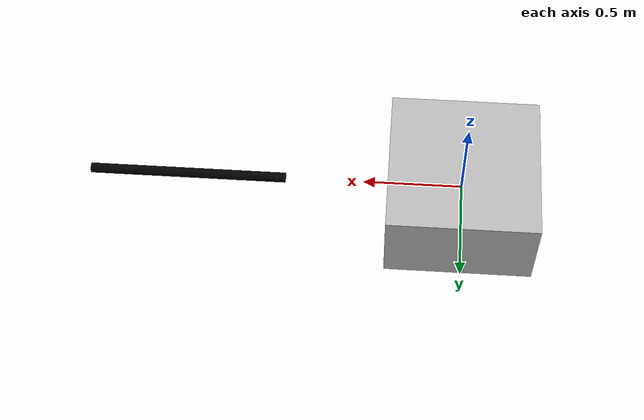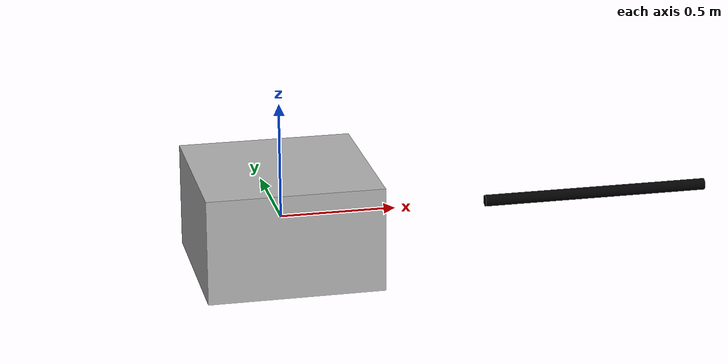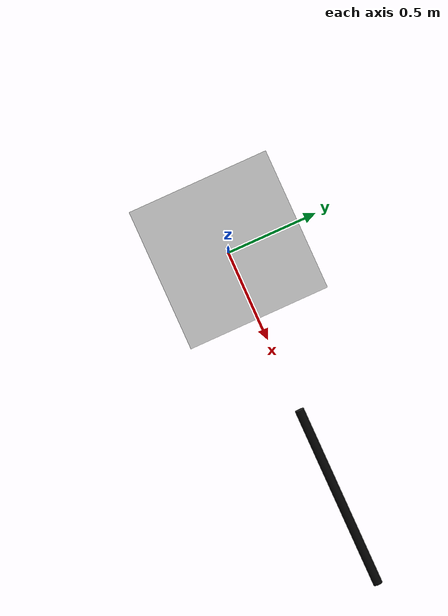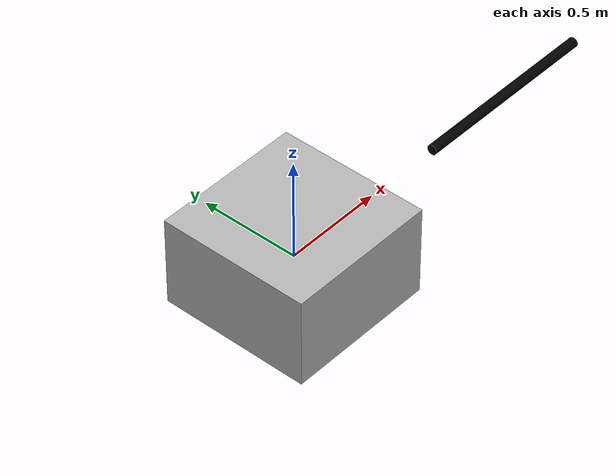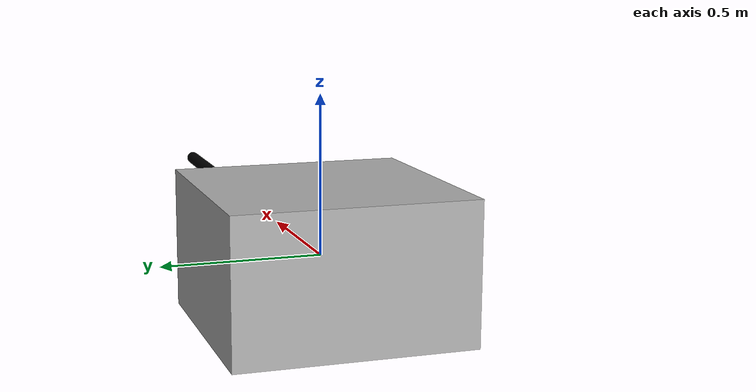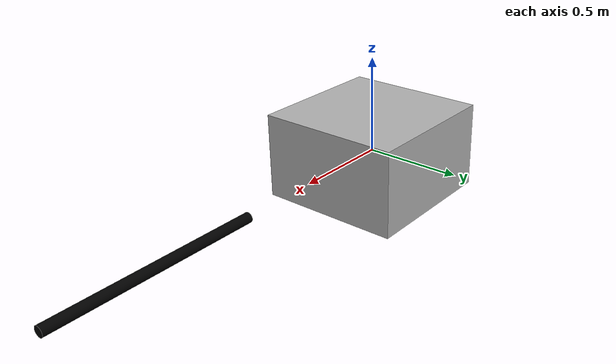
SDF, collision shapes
<?xml version="1.0" ?>

  <sdf version="1.5">
    <model name="tilt_quadcopter_fix">

      <include>
        <uri>model://tilt_quadcopter_base</uri>
        <name>tilt_quadcopter_base</name>
        <pose>0 0 0.0 0 0 0</pose>
      </include>

      <link name="front_rod">
        <pose>1.4 0 0 0 0 0</pose>
        <inertial>
          <mass>0.1</mass>
          <inertia>
            <ixx>0.000125</ixx>
            <iyy>0.008458</iyy>
            <izz>0.008458</izz>
            <ixy>0</ixy>
            <ixz>0</ixz>
            <iyz>0</iyz>
          </inertia>
        </inertial>
        <collision name="front_rod_collision">
          <pose>0 0 0 0 1.57079632679 0</pose>
          <geometry>
            <cylinder>
              <length>1.0</length>
              <radius>0.025</radius>
            </cylinder>
          </geometry>
          <surface>
            <friction>
              <ode>
                <mu>0.5</mu>
                <mu2>0.5</mu2>
              </ode>
            </friction>
            <contact>
              <ode>
                <kp>2000</kp>
                <kd>40</kd>
                <max_vel>0.05</max_vel>
              </ode>
            </contact>
          </surface>
        </collision>
        <visual name="front_rod_visual">
          <pose>0 0 0 0 1.57079632679 0</pose>
          <geometry>
            <cylinder>
              <length>1.0</length>
              <radius>0.025</radius>
            </cylinder>
          </geometry>
          <material>
            <ambient>0 0 0 1</ambient>
            <diffuse>0 0 0 1</diffuse>
          </material>
        </visual>
        <sensor name="front_rangefinder" type="gpu_lidar">
          <visualize>true</visualize>
          <!-- Face the fixed contact wall at x=3.2 in the world frame. -->
          <pose>0.5 0 0 0 0 0</pose>
          <always_on>true</always_on>
          <update_rate>50</update_rate>
          <lidar>
            <scan>
              <horizontal>
                <samples>1</samples>
                <resolution>1</resolution>
                <min_angle>0</min_angle>
                <max_angle>0</max_angle>
              </horizontal>
            </scan>
            <range>
              <min>0.05</min>
              <max>10.0</max>
              <resolution>0.001</resolution>
            </range>
          </lidar>
        </sensor>
      </link>
      <joint name="front_rod_joint" type="prismatic">
        <parent>tilt_quadcopter_base::base</parent>
        <child>front_rod</child>
        <axis>
          <xyz>1 0 0</xyz>
          <limit>
            <lower>-0.12</lower>
            <upper>0.0</upper>
            <effort>200</effort>
            <velocity>1.0</velocity>
          </limit>
          <dynamics>
            <damping>30.0</damping>
            <spring_reference>0.0</spring_reference>
            <spring_stiffness>100.0</spring_stiffness>
          </dynamics>
          <use_parent_model_frame>1</use_parent_model_frame>
        </axis>
        <physics>
          <ode>
            <implicit_spring_damper>1</implicit_spring_damper>
          </ode>
        </physics>
        <sensor name="front_rod_force_torque" type="force_torque">
          <always_on>true</always_on>
          <update_rate>1000</update_rate>
          <force_torque>
            <frame>child</frame>
            <measure_direction>parent_to_child</measure_direction>
          </force_torque>
          <plugin name="front_adm002" filename="libgazebo_adm002_plugin.so">
            <forceAxis>x</forceAxis>
            <forceSign>1.0</forceSign>
            <forceScale>1.0</forceScale>
            <udpBindAddress>127.0.0.1</udpBindAddress>
            <udpBindPort>9024</udpBindPort>
            <streamRateHz>100.0</streamRateHz>
            <deviceAddress>1</deviceAddress>
            <rosTopic>/tilt_quadcopter_fix/front_rod/contact_force_x</rosTopic>
          </plugin>
        </sensor>
      </joint>

      <include>
        <uri>model://tilt_quadcopter_tilt_front</uri>
        <name>tilt_quadcopter_fix_tilt_front_0</name>
        <pose>0.765 -0.835 0 0 0 0</pose>
      </include>
      <joint name = "tilt_quadcopter_fix_tilt_front_0_joint" type="revolute">
        <parent>tilt_quadcopter_base::base</parent>
        <child>tilt_quadcopter_fix_tilt_front_0::tilt</child>
        <axis>
          <xyz>0 1 0</xyz>
          <limit>
            <lower>-1e+16</lower>
            <upper>1e+16</upper>
          </limit>
          <dynamics>
            <damping>0.1</damping>
            <spring_stiffness>0</spring_stiffness>
            <spring_reference>0</spring_reference>
          </dynamics>
          <use_parent_model_frame>1</use_parent_model_frame>
        </axis>
        <physics>
          <ode>
            <implicit_spring_damper>1</implicit_spring_damper>
          </ode>
        </physics>
      </joint>
      <plugin name = "tilt_quadcopter_fix_tilt_front_0_plugin" filename='librotors_gazebo_motor_model.so'>
        <robotNamespace></robotNamespace>
        <jointName>tilt_quadcopter_fix_tilt_front_0_joint </jointName>
        <linkName>tilt_quadcopter_fix_tilt_front_0::tilt</linkName>
        <turningDirection>cw</turningDirection>
        <motorType>position</motorType>
        <commandSubTopic>/gazebo/command/tilt1_pos</commandSubTopic>
        <motorNumber>0</motorNumber>
        <motorSpeedPubTopic>tilt_pos/0</motorSpeedPubTopic>
        <joint_control_pid>
          <p>3</p>
          <i>1.2</i>
          <d>0.8</d>
          <iMax>10</iMax>
          <iMin>-10</iMin>
          <cmdMax>50</cmdMax>
          <cmdMin>-50</cmdMin>
        </joint_control_pid>
      </plugin>

      <include>
        <uri>model://tilt_quadcopter_tilt_front</uri>
        <name>tilt_quadcopter_fix_tilt_front_1</name>
        <pose>-0.765 -0.835 0 0 0 0</pose>
      </include>
      <joint name = "tilt_quadcopter_fix_tilt_front_1_joint" type="revolute">
        <parent>tilt_quadcopter_base::base</parent>
        <child>tilt_quadcopter_fix_tilt_front_1::tilt</child>
        <axis>
          <xyz>0 1 0</xyz>
          <limit>
            <lower>-1e+16</lower>
            <upper>1e+16</upper>
          </limit>
          <dynamics>
            <damping>0.1</damping>
            <spring_stiffness>0</spring_stiffness>
            <spring_reference>0</spring_reference>
          </dynamics>
          <use_parent_model_frame>1</use_parent_model_frame>
        </axis>
        <physics>
          <ode>
            <implicit_spring_damper>1</implicit_spring_damper>
          </ode>
        </physics>
      </joint>
      <plugin name = "tilt_quadcopter_fix_tilt_front_1_plugin" filename='librotors_gazebo_motor_model.so'>
        <robotNamespace></robotNamespace>
        <jointName>tilt_quadcopter_fix_tilt_front_1_joint </jointName>
        <linkName>tilt_quadcopter_fix_tilt_front_1::tilt</linkName>
        <turningDirection>cw</turningDirection>
        <motorType>position</motorType>
        <commandSubTopic>/gazebo/command/tilt1_pos</commandSubTopic>
        <motorNumber>1</motorNumber>
        <motorSpeedPubTopic>tilt_pos/1</motorSpeedPubTopic>
        <joint_control_pid>
          <p>3</p>
          <i>1.2</i>
          <d>0.8</d>
          <iMax>10</iMax>
          <iMin>-10</iMin>
          <cmdMax>50</cmdMax>
          <cmdMin>-50</cmdMin>
        </joint_control_pid>
      </plugin>

      <include>
        <uri>model://tilt_quadcopter_tilt_front</uri>
        <name>tilt_quadcopter_fix_tilt_front_2</name>
        <pose>-0.765 0.835 0 0 0 0</pose>
      </include>
      <joint name = "tilt_quadcopter_fix_tilt_front_2_joint" type="revolute">
        <parent>tilt_quadcopter_base::base</parent>
        <child>tilt_quadcopter_fix_tilt_front_2::tilt</child>
        <axis>
          <xyz>0 1 0</xyz>
          <limit>
            <lower>-1e+16</lower>
            <upper>1e+16</upper>
          </limit>
          <dynamics>
            <damping>0.1</damping>
            <spring_stiffness>0</spring_stiffness>
            <spring_reference>0</spring_reference>
          </dynamics>
          <use_parent_model_frame>1</use_parent_model_frame>
        </axis>
        <physics>
          <ode>
            <implicit_spring_damper>1</implicit_spring_damper>
          </ode>
        </physics>
      </joint>
      <plugin name = "tilt_quadcopter_fix_tilt_front_2_plugin" filename='librotors_gazebo_motor_model.so'>
        <robotNamespace></robotNamespace>
        <jointName>tilt_quadcopter_fix_tilt_front_2_joint </jointName>
        <linkName>tilt_quadcopter_fix_tilt_front_2::tilt</linkName>
        <turningDirection>cw</turningDirection>
        <motorType>position</motorType>
        <commandSubTopic>/gazebo/command/tilt1_pos</commandSubTopic>
        <motorNumber>2</motorNumber>
        <motorSpeedPubTopic>tilt_pos/2</motorSpeedPubTopic>
        <joint_control_pid>
          <p>3</p>
          <i>1.2</i>
          <d>0.8</d>
          <iMax>10</iMax>
          <iMin>-10</iMin>
          <cmdMax>50</cmdMax>
          <cmdMin>-50</cmdMin>
        </joint_control_pid>
      </plugin>

      <include>
        <uri>model://tilt_quadcopter_tilt_front</uri>
        <name>tilt_quadcopter_fix_tilt_front_3</name>
        <pose>0.765 0.835 0 0 0 3.141592653589793</pose>
      </include>
      <joint name = "tilt_quadcopter_fix_tilt_front_3_joint" type="revolute">
        <parent>tilt_quadcopter_base::base</parent>
        <child>tilt_quadcopter_fix_tilt_front_3::tilt</child>
        <axis>
          <xyz>0 -1 0</xyz>
          <limit>
            <lower>-1e+16</lower>
            <upper>1e+16</upper>
          </limit>
          <dynamics>
            <damping>0.1</damping>
            <spring_stiffness>0</spring_stiffness>
            <spring_reference>0</spring_reference>
          </dynamics>
          <use_parent_model_frame>1</use_parent_model_frame>
        </axis>
        <physics>
          <ode>
            <implicit_spring_damper>1</implicit_spring_damper>
          </ode>
        </physics>
      </joint>
      <plugin name = "tilt_quadcopter_fix_tilt_front_3_plugin" filename='librotors_gazebo_motor_model.so'>
        <robotNamespace></robotNamespace>
        <jointName>tilt_quadcopter_fix_tilt_front_3_joint </jointName>
        <linkName>tilt_quadcopter_fix_tilt_front_3::tilt</linkName>
        <turningDirection>cw</turningDirection>
        <motorType>position</motorType>
        <commandSubTopic>/gazebo/command/tilt1_pos</commandSubTopic>
        <motorNumber>3</motorNumber>
        <motorSpeedPubTopic>tilt_pos/3</motorSpeedPubTopic>
        <joint_control_pid>
          <p>3</p>
          <i>1.2</i>
          <d>0.8</d>
          <iMax>10</iMax>
          <iMin>-10</iMin>
          <cmdMax>50</cmdMax>
          <cmdMin>-50</cmdMin>
        </joint_control_pid>
      </plugin>

  <include>
    <uri>model://tilt_quadcopter_prop</uri>
    <name>tilt_quadcopter_fix_prop_0</name>
    <pose relative_to= "tilt_quadcopter_fix_prop_0_joint" > 0 0 0 0 0 0</pose>
  </include>
  <joint name = "tilt_quadcopter_fix_prop_0_joint" type="revolute">
    <pose relative_to= 'tilt_quadcopter_fix_tilt_front_0::tilt' > 0 0 0.1 0.3490658503988659 0 0</pose>
    <parent>tilt_quadcopter_fix_tilt_front_0::tilt</parent>
    <child>tilt_quadcopter_fix_prop_0::prop</child>
    <axis>
      <xyz>0 0 1</xyz>
      <limit>
        <lower>-1e+16</lower>
        <upper>1e+16</upper>
      </limit>
      <dynamics>
        <damping>0.0001</damping>
      </dynamics>
    </axis>
  </joint>
  <plugin name = "prop_0_plugin" filename='librotors_gazebo_motor_model.so'>
    <robotNamespace></robotNamespace>
    <jointName>tilt_quadcopter_fix_prop_0_joint</jointName>
    <linkName>tilt_quadcopter_fix_prop_0::prop</linkName>
    <turningDirection>ccw</turningDirection>
    <timeConstantUp>0.0125</timeConstantUp>
    <timeConstantDown>0.025</timeConstantDown>
    <maxRotVelocity>1000</maxRotVelocity>
    <motorConstant>1.199e-05</motorConstant>
    <momentConstant>0.1</momentConstant>
    <commandSubTopic>/gazebo/command/prop_speed</commandSubTopic>
    <motorNumber>0</motorNumber>
    <rotorDragCoefficient>0.000806428</rotorDragCoefficient>
    <rollingMomentCoefficient>1e-06</rollingMomentCoefficient>
    <motorSpeedPubTopic>prop_speed/0</motorSpeedPubTopic>
    <rotorVelocitySlowdownSim>10</rotorVelocitySlowdownSim>
  </plugin>

  <include>
    <uri>model://tilt_quadcopter_prop</uri>
    <name>tilt_quadcopter_fix_prop_1</name>
    <pose relative_to= "tilt_quadcopter_fix_prop_1_joint" > 0 0 0 0 0 0</pose>
  </include>
  <joint name = "tilt_quadcopter_fix_prop_1_joint" type="revolute">
    <pose relative_to= 'tilt_quadcopter_fix_tilt_front_0::tilt' > 0 0 -0.1 -0.3490658503988659 0 0</pose>
    <parent>tilt_quadcopter_fix_tilt_front_0::tilt</parent>
    <child>tilt_quadcopter_fix_prop_1::prop</child>
    <axis>
      <xyz>0 0 1</xyz>
      <limit>
        <lower>-1e+16</lower>
        <upper>1e+16</upper>
      </limit>
      <dynamics>
        <damping>0.0001</damping>
      </dynamics>
    </axis>
  </joint>
  <plugin name = "prop_1_plugin" filename='librotors_gazebo_motor_model.so'>
    <robotNamespace></robotNamespace>
    <jointName>tilt_quadcopter_fix_prop_1_joint</jointName>
    <linkName>tilt_quadcopter_fix_prop_1::prop</linkName>
    <turningDirection>cw</turningDirection>
    <timeConstantUp>0.0125</timeConstantUp>
    <timeConstantDown>0.025</timeConstantDown>
    <maxRotVelocity>1000</maxRotVelocity>
    <motorConstant>1.199e-05</motorConstant>
    <momentConstant>0.1</momentConstant>
    <commandSubTopic>/gazebo/command/prop_speed</commandSubTopic>
    <motorNumber>1</motorNumber>
    <rotorDragCoefficient>0.000806428</rotorDragCoefficient>
    <rollingMomentCoefficient>1e-06</rollingMomentCoefficient>
    <motorSpeedPubTopic>prop_speed/1</motorSpeedPubTopic>
    <rotorVelocitySlowdownSim>10</rotorVelocitySlowdownSim>
  </plugin>

  <include>
    <uri>model://tilt_quadcopter_prop</uri>
    <name>tilt_quadcopter_fix_prop_2</name>
    <pose relative_to= "tilt_quadcopter_fix_prop_2_joint" > 0 0 0 0 0 0</pose>
  </include>
  <joint name = "tilt_quadcopter_fix_prop_2_joint" type="revolute">
    <pose relative_to= 'tilt_quadcopter_fix_tilt_front_1::tilt' > 0 0 0.1 0.3490658503988659 0 0</pose>
    <parent>tilt_quadcopter_fix_tilt_front_1::tilt</parent>
    <child>tilt_quadcopter_fix_prop_2::prop</child>
    <axis>
      <xyz>0 0 1</xyz>
      <limit>
        <lower>-1e+16</lower>
        <upper>1e+16</upper>
      </limit>
      <dynamics>
        <damping>0.0001</damping>
      </dynamics>
    </axis>
  </joint>
  <plugin name = "prop_2_plugin" filename='librotors_gazebo_motor_model.so'>
    <robotNamespace></robotNamespace>
    <jointName>tilt_quadcopter_fix_prop_2_joint</jointName>
    <linkName>tilt_quadcopter_fix_prop_2::prop</linkName>
    <turningDirection>cw</turningDirection>
    <timeConstantUp>0.0125</timeConstantUp>
    <timeConstantDown>0.025</timeConstantDown>
    <maxRotVelocity>1000</maxRotVelocity>
    <motorConstant>1.199e-05</motorConstant>
    <momentConstant>0.1</momentConstant>
    <commandSubTopic>/gazebo/command/prop_speed</commandSubTopic>
    <motorNumber>2</motorNumber>
    <rotorDragCoefficient>0.000806428</rotorDragCoefficient>
    <rollingMomentCoefficient>1e-06</rollingMomentCoefficient>
    <motorSpeedPubTopic>prop_speed/2</motorSpeedPubTopic>
    <rotorVelocitySlowdownSim>10</rotorVelocitySlowdownSim>
  </plugin>

  <include>
    <uri>model://tilt_quadcopter_prop</uri>
    <name>tilt_quadcopter_fix_prop_3</name>
    <pose relative_to= "tilt_quadcopter_fix_prop_3_joint" > 0 0 0 0 0 0</pose>
  </include>
  <joint name = "tilt_quadcopter_fix_prop_3_joint" type="revolute">
    <pose relative_to= 'tilt_quadcopter_fix_tilt_front_1::tilt' > 0 0 -0.1 -0.3490658503988659 0 0</pose>
    <parent>tilt_quadcopter_fix_tilt_front_1::tilt</parent>
    <child>tilt_quadcopter_fix_prop_3::prop</child>
    <axis>
      <xyz>0 0 1</xyz>
      <limit>
        <lower>-1e+16</lower>
        <upper>1e+16</upper>
      </limit>
      <dynamics>
        <damping>0.0001</damping>
      </dynamics>
    </axis>
  </joint>
  <plugin name = "prop_3_plugin" filename='librotors_gazebo_motor_model.so'>
    <robotNamespace></robotNamespace>
    <jointName>tilt_quadcopter_fix_prop_3_joint</jointName>
    <linkName>tilt_quadcopter_fix_prop_3::prop</linkName>
    <turningDirection>ccw</turningDirection>
    <timeConstantUp>0.0125</timeConstantUp>
    <timeConstantDown>0.025</timeConstantDown>
    <maxRotVelocity>1000</maxRotVelocity>
    <motorConstant>1.199e-05</motorConstant>
    <momentConstant>0.1</momentConstant>
    <commandSubTopic>/gazebo/command/prop_speed</commandSubTopic>
    <motorNumber>3</motorNumber>
    <rotorDragCoefficient>0.000806428</rotorDragCoefficient>
    <rollingMomentCoefficient>1e-06</rollingMomentCoefficient>
    <motorSpeedPubTopic>prop_speed/3</motorSpeedPubTopic>
    <rotorVelocitySlowdownSim>10</rotorVelocitySlowdownSim>
  </plugin>

  <include>
    <uri>model://tilt_quadcopter_prop</uri>
    <name>tilt_quadcopter_fix_prop_4</name>
    <pose relative_to= "tilt_quadcopter_fix_prop_4_joint" > 0 0 0 0 0 0</pose>
  </include>
  <joint name = "tilt_quadcopter_fix_prop_4_joint" type="revolute">
    <pose relative_to= 'tilt_quadcopter_fix_tilt_front_2::tilt' > 0 0 0.1 -0.3490658503988659 0 0</pose>
    <parent>tilt_quadcopter_fix_tilt_front_2::tilt</parent>
    <child>tilt_quadcopter_fix_prop_4::prop</child>
    <axis>
      <xyz>0 0 1</xyz>
      <limit>
        <lower>-1e+16</lower>
        <upper>1e+16</upper>
      </limit>
      <dynamics>
        <damping>0.0001</damping>
      </dynamics>
    </axis>
  </joint>
  <plugin name = "prop_4_plugin" filename='librotors_gazebo_motor_model.so'>
    <robotNamespace></robotNamespace>
    <jointName>tilt_quadcopter_fix_prop_4_joint</jointName>
    <linkName>tilt_quadcopter_fix_prop_4::prop</linkName>
    <turningDirection>ccw</turningDirection>
    <timeConstantUp>0.0125</timeConstantUp>
    <timeConstantDown>0.025</timeConstantDown>
    <maxRotVelocity>1000</maxRotVelocity>
    <motorConstant>1.199e-05</motorConstant>
    <momentConstant>0.1</momentConstant>
    <commandSubTopic>/gazebo/command/prop_speed</commandSubTopic>
    <motorNumber>4</motorNumber>
    <rotorDragCoefficient>0.000806428</rotorDragCoefficient>
    <rollingMomentCoefficient>1e-06</rollingMomentCoefficient>
    <motorSpeedPubTopic>prop_speed/4</motorSpeedPubTopic>
    <rotorVelocitySlowdownSim>10</rotorVelocitySlowdownSim>
  </plugin>

  <include>
    <uri>model://tilt_quadcopter_prop</uri>
    <name>tilt_quadcopter_fix_prop_5</name>
    <pose relative_to= "tilt_quadcopter_fix_prop_5_joint" > 0 0 0 0 0 0</pose>
  </include>
  <joint name = "tilt_quadcopter_fix_prop_5_joint" type="revolute">
    <pose relative_to= 'tilt_quadcopter_fix_tilt_front_2::tilt' > 0 0 -0.1 0.3490658503988659 0 0</pose>
    <parent>tilt_quadcopter_fix_tilt_front_2::tilt</parent>
    <child>tilt_quadcopter_fix_prop_5::prop</child>
    <axis>
      <xyz>0 0 1</xyz>
      <limit>
        <lower>-1e+16</lower>
        <upper>1e+16</upper>
      </limit>
      <dynamics>
        <damping>0.0001</damping>
      </dynamics>
    </axis>
  </joint>
  <plugin name = "prop_5_plugin" filename='librotors_gazebo_motor_model.so'>
    <robotNamespace></robotNamespace>
    <jointName>tilt_quadcopter_fix_prop_5_joint</jointName>
    <linkName>tilt_quadcopter_fix_prop_5::prop</linkName>
    <turningDirection>cw</turningDirection>
    <timeConstantUp>0.0125</timeConstantUp>
    <timeConstantDown>0.025</timeConstantDown>
    <maxRotVelocity>1000</maxRotVelocity>
    <motorConstant>1.199e-05</motorConstant>
    <momentConstant>0.1</momentConstant>
    <commandSubTopic>/gazebo/command/prop_speed</commandSubTopic>
    <motorNumber>5</motorNumber>
    <rotorDragCoefficient>0.000806428</rotorDragCoefficient>
    <rollingMomentCoefficient>1e-06</rollingMomentCoefficient>
    <motorSpeedPubTopic>prop_speed/5</motorSpeedPubTopic>
    <rotorVelocitySlowdownSim>10</rotorVelocitySlowdownSim>
  </plugin>

  <include>
    <uri>model://tilt_quadcopter_prop</uri>
    <name>tilt_quadcopter_fix_prop_6</name>
    <pose relative_to= "tilt_quadcopter_fix_prop_6_joint" > 0 0 0 0 0 0</pose>
  </include>
  <joint name = "tilt_quadcopter_fix_prop_6_joint" type="revolute">
    <pose relative_to= 'tilt_quadcopter_fix_tilt_front_3::tilt' > 0 0 0.1 0.3490658503988659 0 0</pose>
    <parent>tilt_quadcopter_fix_tilt_front_3::tilt</parent>
    <child>tilt_quadcopter_fix_prop_6::prop</child>
    <axis>
      <xyz>0 0 1</xyz>
      <limit>
        <lower>-1e+16</lower>
        <upper>1e+16</upper>
      </limit>
      <dynamics>
        <damping>0.0001</damping>
      </dynamics>
    </axis>
  </joint>
  <plugin name = "prop_6_plugin" filename='librotors_gazebo_motor_model.so'>
    <robotNamespace></robotNamespace>
    <jointName>tilt_quadcopter_fix_prop_6_joint</jointName>
    <linkName>tilt_quadcopter_fix_prop_6::prop</linkName>
    <turningDirection>cw</turningDirection>
    <timeConstantUp>0.0125</timeConstantUp>
    <timeConstantDown>0.025</timeConstantDown>
    <maxRotVelocity>1000</maxRotVelocity>
    <motorConstant>1.199e-05</motorConstant>
    <momentConstant>0.1</momentConstant>
    <commandSubTopic>/gazebo/command/prop_speed</commandSubTopic>
    <motorNumber>6</motorNumber>
    <rotorDragCoefficient>0.000806428</rotorDragCoefficient>
    <rollingMomentCoefficient>1e-06</rollingMomentCoefficient>
    <motorSpeedPubTopic>prop_speed/6</motorSpeedPubTopic>
    <rotorVelocitySlowdownSim>10</rotorVelocitySlowdownSim>
  </plugin>

  <include>
    <uri>model://tilt_quadcopter_prop</uri>
    <name>tilt_quadcopter_fix_prop_7</name>
    <pose relative_to= "tilt_quadcopter_fix_prop_7_joint" > 0 0 0 0 0 0</pose>
  </include>
  <joint name = "tilt_quadcopter_fix_prop_7_joint" type="revolute">
    <pose relative_to= 'tilt_quadcopter_fix_tilt_front_3::tilt' > 0 0 -0.1 -0.3490658503988659 0 0</pose>
    <parent>tilt_quadcopter_fix_tilt_front_3::tilt</parent>
    <child>tilt_quadcopter_fix_prop_7::prop</child>
    <axis>
      <xyz>0 0 1</xyz>
      <limit>
        <lower>-1e+16</lower>
        <upper>1e+16</upper>
      </limit>
      <dynamics>
        <damping>0.0001</damping>
      </dynamics>
    </axis>
  </joint>
  <plugin name = "prop_7_plugin" filename='librotors_gazebo_motor_model.so'>
    <robotNamespace></robotNamespace>
    <jointName>tilt_quadcopter_fix_prop_7_joint</jointName>
    <linkName>tilt_quadcopter_fix_prop_7::prop</linkName>
    <turningDirection>ccw</turningDirection>
    <timeConstantUp>0.0125</timeConstantUp>
    <timeConstantDown>0.025</timeConstantDown>
    <maxRotVelocity>1000</maxRotVelocity>
    <motorConstant>1.199e-05</motorConstant>
    <momentConstant>0.1</momentConstant>
    <commandSubTopic>/gazebo/command/prop_speed</commandSubTopic>
    <motorNumber>7</motorNumber>
    <rotorDragCoefficient>0.000806428</rotorDragCoefficient>
    <rollingMomentCoefficient>1e-06</rollingMomentCoefficient>
    <motorSpeedPubTopic>prop_speed/7</motorSpeedPubTopic>
    <rotorVelocitySlowdownSim>10</rotorVelocitySlowdownSim>
  </plugin>

<plugin name="ArduRotorTiltQuadcopterFix" filename="libArduRotorTiltQuadcopter.so">
  <fdm_addr>127.0.0.1</fdm_addr>
  <fdm_port_in>9002</fdm_port_in>
  <fdm_port_out>9003</fdm_port_out>
  <modelXYZToAirplaneXForwardZDown>0 0 0 3.141593 0 0</modelXYZToAirplaneXForwardZDown>
  <gazeboXYZToNED>0 0 0 3.141593 0 0</gazeboXYZToNED>
  <motor_num>8</motor_num>
  <servo_num>4</servo_num>
  <motor_pub>/gazebo/command/prop_speed</motor_pub>
  <servo1_pub>/gazebo/command/tilt1_pos</servo1_pub>
  <rangefinderName>front_rangefinder</rangefinderName>
  <rangefinderUdpBindAddr>127.0.0.1</rangefinderUdpBindAddr>
  <rangefinderUdpBindPort>9025</rangefinderUdpBindPort>
  <rangefinderMinDistanceM>0.05</rangefinderMinDistanceM>
  <rangefinderMaxDistanceM>10.0</rangefinderMaxDistanceM>
  <rangefinderRateHz>50.0</rangefinderRateHz>
  <imuName>imu_sensor</imuName>
  <connectionTimeoutMaxCount>5</connectionTimeoutMaxCount>
</plugin>

<plugin name="imu_plugin" filename="librotors_gazebo_imu_plugin.so">
  <robotNamespace>tilt_quadcopter_fix</robotNamespace>
  <linkName>tilt_quadcopter_base::imu_link</linkName>
  <imuTopic>imu</imuTopic>
  <gyroscopeNoiseDensity>0.000349</gyroscopeNoiseDensity>     <!-- rad/s/√Hz -->
  <gyroscopeBiasRandomWalk>0.000266</gyroscopeBiasRandomWalk>          <!-- rad/s²/√Hz -->
  <gyroscopeBiasCorrelationTime>600</gyroscopeBiasCorrelationTime>
  <gyroscopeTurnOnBiasSigma>0.0004</gyroscopeTurnOnBiasSigma>  <!-- rad/s -->
  <accelerometerNoiseDensity>0.00324</accelerometerNoiseDensity> <!-- m/s²/√Hz -->
  <accelerometerRandomWalk>0.0056</accelerometerRandomWalk>     <!-- m/s³/√Hz -->
  <accelerometerBiasCorrelationTime>600</accelerometerBiasCorrelationTime>
  <accelerometerTurnOnBiasSigma>0.016</accelerometerTurnOnBiasSigma> <!-- m/s² -->
</plugin>

</model>
</sdf>

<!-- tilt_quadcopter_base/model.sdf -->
<sdf version="1.5">
    <model name="tilt_quadcopter_base">

      <link name="base">
      <pose>0 0 0.0  0 0 0</pose>
      <inertial>
        <pose>0 0 0 0 0 0</pose>
        <mass>1.0</mass>
        <inertia>
          <ixx>0.2</ixx>
          <iyy>0.2</iyy>
          <izz>0.2</izz>
          <ixy>0</ixy>
          <ixz>0</ixz>
          <iyz>0</iyz>
        </inertia>
      </inertial>
      <collision name="base_collision">
        <pose>0 0 0  0 0 0</pose>
        <geometry>
          <box>
            <size>0.750 0.750 0.45</size>
          </box>
        </geometry>
        <surface>
          <contact>
            <ode/>
          </contact>
          <friction>
            <ode/>
          </friction>
        </surface>
      </collision>
      <visual name="base_visual">
        <geometry>
          <mesh>
            <uri>model://tilt_quadcopter_base/meshes/base.STL</uri>
          </mesh>
        </geometry>
        <material>
          <!-- Gazebo Classic Grey material, expressed without OGRE scripts. -->
          <ambient>0.3 0.3 0.3 1</ambient>
          <diffuse>0.7 0.7 0.7 1</diffuse>
          <specular>0.01 0.01 0.01 1</specular>
        </material>
      </visual>
    </link>
    <link name='imu_link'>
    <inertial>
      <pose>0 0 0 0 0 0</pose>
      <mass>0.15</mass>
      <inertia>
        <ixx>0.00001</ixx>
        <ixy>0</ixy>
        <ixz>0</ixz>
        <iyy>0.00002</iyy>
        <iyz>0</iyz>
        <izz>0.00002</izz>
      </inertia>
    </inertial>
    <sensor name="imu_sensor" type="imu">
      <pose>0 0 0 3.141593 0 0</pose>
      <always_on>1</always_on>
      <update_rate>1000.0</update_rate>
      <topic>__default_topic__</topic>
    </sensor>
  </link>
  <joint name='imu_joint' type='revolute'>
    <child>imu_link</child>
    <parent>base</parent>
    <axis>
      <xyz>0 0 1</xyz>
      <limit>
        <lower>-0.0001</lower>
        <upper>0.00001</upper>
        <effort>0</effort>
        <velocity>0</velocity>
      </limit>
      <dynamics>
        <damping>1.0</damping>
      </dynamics>
      <use_parent_model_frame>1</use_parent_model_frame>
    </axis>
    <physics>
      <ode>
        <implicit_spring_damper>1</implicit_spring_damper>
      </ode>
    </physics>
  </joint>

</model>
</sdf>

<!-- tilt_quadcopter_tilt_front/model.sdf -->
<sdf version="1.5">
    <model name="tilt_quadcopter_tilt_front">
      <link name='tilt'>
      <pose>0.0 -0.0 0.0 0 -0 0</pose>
      <inertial>
        <pose>0 0 0 0 -0 0</pose>
        <mass>0.2</mass>
        <inertia>
          <ixx>0.04</ixx>
          <ixy>0</ixy>
          <ixz>0</ixz>
          <iyy>0.1</iyy>
          <iyz>0</iyz>
          <!-- User-approved simulation approximation (2026-09-06):
               original 0.01 violates Iyy <= Ixx + Izz. Preserve mass,
               Ixx and the tilt-axis Iyy; this is not CAD-derived inertia. -->
          <izz>0.06</izz>
        </inertia>
      </inertial>
      <collision name='tilt_collision'>
        <pose>0 0 0 0 -0 0</pose>
        <geometry>
          <box>
            <size>0.0 0.0 0.0</size>
          </box>
        </geometry>
        <max_contacts>1</max_contacts>
      </collision>
      <visual name='tilt_visual'>
        <pose>0 0 0 0 -0 0</pose>
        <geometry>
          <mesh>
            <uri>model://tilt_quadcopter_tilt_front/meshes/tilt_front.STL</uri>
          </mesh>
        </geometry>
        <material>
          <!-- Gazebo Classic Blue material, expressed without OGRE scripts. -->
          <ambient>0 0 1 1</ambient>
          <diffuse>0 0 1 1</diffuse>
          <specular>0.1 0.1 0.1 1</specular>
        </material>
      </visual>
      <gravity>1</gravity>
      <velocity_decay />
      <self_collide>0</self_collide>
    </link>
  </model>
</sdf>

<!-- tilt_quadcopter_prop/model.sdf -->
<sdf version="1.5">
    <model name="tilt_quadcopter_prop">
      <link name='prop'>
      <pose>0.0 -0.0 0.0 0 -0 0</pose>
      <inertial>
        <pose>0 0 0 0 -0 0</pose>
        <mass>0.001</mass>
        <inertia>
          <ixx>0.001</ixx>
          <ixy>0</ixy>
          <ixz>0</ixz>
          <iyy>0.001</iyy>
          <iyz>0</iyz>
          <izz>0.001</izz>
        </inertia>
      </inertial>
      <collision name='prop_collision'>
        <pose>0 0 0 0 -0 0</pose>
        <geometry>
          <box>
            <size>0.001 0.001 0.001</size>
          </box>
        </geometry>
        <max_contacts>1</max_contacts>
      </collision>
      <visual name='prop_visual'>
        <pose>0 0 0 0 -0 0</pose>
        <geometry>
          <mesh>
            <uri>model://tilt_quadcopter_prop/meshes/prop.STL</uri>
          </mesh>
        </geometry>
        <material>
          <!-- Gazebo Classic Blue material, expressed without OGRE scripts. -->
          <ambient>0 0 1 1</ambient>
          <diffuse>0 0 1 1</diffuse>
          <specular>0.1 0.1 0.1 1</specular>
        </material>
      </visual>
      <gravity>1</gravity>
      <velocity_decay />
      <self_collide>0</self_collide>
    </link>
  </model>
</sdf>
